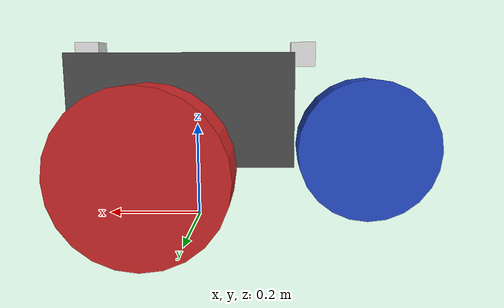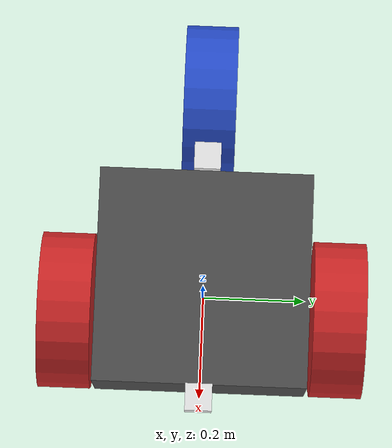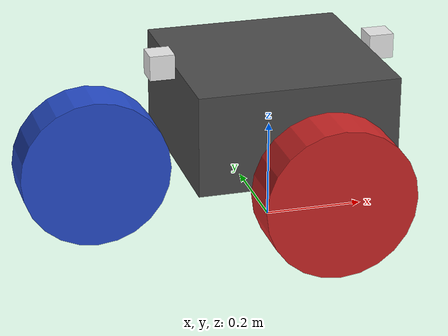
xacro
<?xml version="1.0" ?>
<robot name="custom_diff_robot" xmlns:xacro="http://ros.org/wiki/xacro">

    <!-- Constants-->
    <xacro:property name="pi_const" value="3.14159265"/>

    <!-- Material density-->
    <xacro:property name="density" value="2710"/>

    <!-- Body dimensions-->
    <xacro:property name="body_x_dim" value="0.4"/>
    <xacro:property name="body_y_dim" value="0.4"/>
    <xacro:property name="body_z_dim" value="0.2"/>
    <xacro:property name="body_mass" value="${density*body_x_dim*body_y_dim*body_z_dim}"/>

    <!-- Wheel dimensions-->
    <xacro:property name="wheel_radius" value="0.15"/>
    <xacro:property name="wheel_width" value="0.1"/>
    <xacro:property name="wheel_z_location" value="-0.1"/>
    <xacro:property name="wheel_mass" value="${density*pi_const*wheel_radius*wheel_radius*wheel_width}"/>
    <xacro:property name="Iz_wheel" value="${0.5*wheel_mass*wheel_radius*wheel_radius}"/>
    <xacro:property name="I_wheel" value="${-(1.0/12.0)*wheel_mass*(3.0*wheel_radius*wheel_radius+wheel_width*wheel_width)}"/>
    <xacro:macro name="inertia_wheel">
        <inertial>
            <origin rpy="0 0 0" xyz="0 0 0"/>
            <mass value="${wheel_mass}"/>
            <inertia ixx="${I_wheel}" ixy="0.0" ixz="0.0" iyy="${I_wheel}" iyz="0" izz="${Iz_wheel}" />
        </inertial>
    </xacro:macro>

    <!-- Controller-->
    <xacro:include filename="$(find custom_diff_robot)/urdf/robot.gazebo"/>

    <!-- Robot link and joints definition-->

    <link name="base_footprint"/>

    <joint name="base_joint" type="fixed">
        <parent link="base_footprint"/>
        <child link="base_link"/>
        <origin xyz="0 0 ${-wheel_z_location+wheel_radius}" rpy="0 0 0"/>
    </joint>

    <link name="base_link">
        <visual>
            <origin xyz="0 0 0" rpy="0 0 0"/>
            <geometry>
                <box size="${body_x_dim} ${body_y_dim} ${body_z_dim}" />
            </geometry>
        </visual>
        <collision>
            <origin xyz="0 0 0" rpy="0 0 0"/>
            <geometry>
                <box size="${body_x_dim} ${body_y_dim} ${body_z_dim}" />
            </geometry>
        </collision>

        <inertial>
            <origin xyz="0 0 0" rpy="0 0 0"/>
            <mass value="${body_mass}"/>
            <inertia
                    ixx="${(1/12)*body_mass*(body_y_dim*body_y_dim+body_z_dim*body_z_dim)}"
                    ixy="0" ixz="0"
                    iyy="${(1/12)*body_mass*(body_x_dim*body_x_dim+body_z_dim*body_z_dim)}"
                    iyz="0"
                    izz="${(1/12)*body_mass*(body_x_dim*body_x_dim+body_y_dim*body_y_dim)}"  />
        </inertial>
    </link>

    <joint name="wheel_right_joint" type="continuous">
        <parent link="base_link"/>
        <child link="wheel_right_link"/>
        <origin xyz="${body_x_dim/2-wheel_radius} ${-body_y_dim/2-1.2*wheel_width/2} ${wheel_z_location}" rpy="0 0 0"/>
        <axis xyz="0 1 0"/>
    </joint>

    <link name="wheel_right_link">
        <visual>
            <origin xyz="0 0 0" rpy="${pi_const/2} 0 0"/>
            <geometry>
                <cylinder length="${wheel_width}" radius="${wheel_radius}" />
            </geometry>
        </visual>

        <collision>
            <origin xyz="0 0 0" rpy="${pi_const/2} 0 0"/>
            <geometry>
                <cylinder length="${wheel_width}" radius="${wheel_radius}" />
            </geometry>
        </collision>

        <xacro:inertia_wheel />
    </link>

    <joint name="wheel_left_joint" type="continuous">
        <parent link="base_link"/>
        <child link="wheel_left_link"/>
        <origin xyz="${body_x_dim/2-wheel_radius} ${body_y_dim/2+1.2*wheel_width/2} ${wheel_z_location}" rpy="0 0 0"/>
        <axis xyz="0 1 0"/>
    </joint>

    <link name="wheel_left_link">
        <visual>
            <origin xyz="0 0 0" rpy="${pi_const/2} 0 0"/>
            <geometry>
                <cylinder length="${wheel_width}" radius="${wheel_radius}" />
            </geometry>
        </visual>

        <collision>
            <origin xyz="0 0 0" rpy="${pi_const/2} 0 0"/>
            <geometry>
                <cylinder length="${wheel_width}" radius="${wheel_radius}" />
            </geometry>
        </collision>

        <xacro:inertia_wheel />
    </link>

  <joint name="caster_back_joint" type="fixed">
    <parent link="base_link"/>
    <child link="caster_back_link"/>
    <origin xyz="${-body_x_dim/2-1.1*wheel_radius} 0 ${wheel_z_location}" rpy="0 0 0"/>
  </joint>

  <link name="caster_back_link">
    <visual>
        <origin xyz="0 0 0" rpy="${pi_const/2} 0 0"/>
        <geometry>
            <cylinder length="${wheel_width}" radius="${wheel_radius}" />
        </geometry>
    </visual>

    <collision>
      <origin xyz="0 0 0" rpy="${pi_const/2} 0 0"/>
      <geometry>
        <cylinder length="${wheel_width}" radius="${wheel_radius}" />
      </geometry>
    </collision>

    <xacro:inertia_wheel />
  </link>

  <joint name="front_laser_joint" type="fixed">
    <parent link="base_link"/>
    <child link="front_laser_link"/>
    <origin xyz="${0.025+body_x_dim/2} 0 ${body_z_dim/2}" rpy="0 0 0"/>
  </joint>

  <link name="front_laser_link">
    <visual>
      <origin xyz="0 0 0" rpy="0 0 0"/>
      <geometry>
        <box size="0.05 0.05 0.05"/>
      </geometry>
    </visual>

    <collision>
      <origin xyz="0 0 0" rpy="0 0 0"/>
      <geometry>
        <box size="0.05 0.05 0.05"/>
      </geometry>
    </collision>

    <inertial>
      <mass value="0.114" />
      <origin xyz="0 0 0" />
      <inertia ixx="0.001" ixy="0.0" ixz="0.0"
               iyy="0.001" iyz="0.0"
               izz="0.001" />
    </inertial>
  </link>

  <joint name="back_laser_joint" type="fixed">
    <parent link="base_link"/>
    <child link="back_laser_link"/>
    <origin xyz="${-body_x_dim/2-0.025} 0 ${body_z_dim/2}" rpy="0 0 ${pi_const}"/>
  </joint>

  <link name="back_laser_link">
    <visual>
      <origin xyz="0 0 0" rpy="0 0 0"/>
      <geometry>
        <box size="0.05 0.05 0.05"/>
      </geometry>
    </visual>

    <collision>
      <origin xyz="0 0 0" rpy="0 0 0"/>
      <geometry>
        <box size="0.05 0.05 0.05"/>
      </geometry>
    </collision>

    <inertial>
      <mass value="0.114" />
      <origin xyz="0 0 0" />
      <inertia ixx="0.001" ixy="0.0" ixz="0.0"
               iyy="0.001" iyz="0.0"
               izz="0.001" />
    </inertial>
  </link>

</robot>
